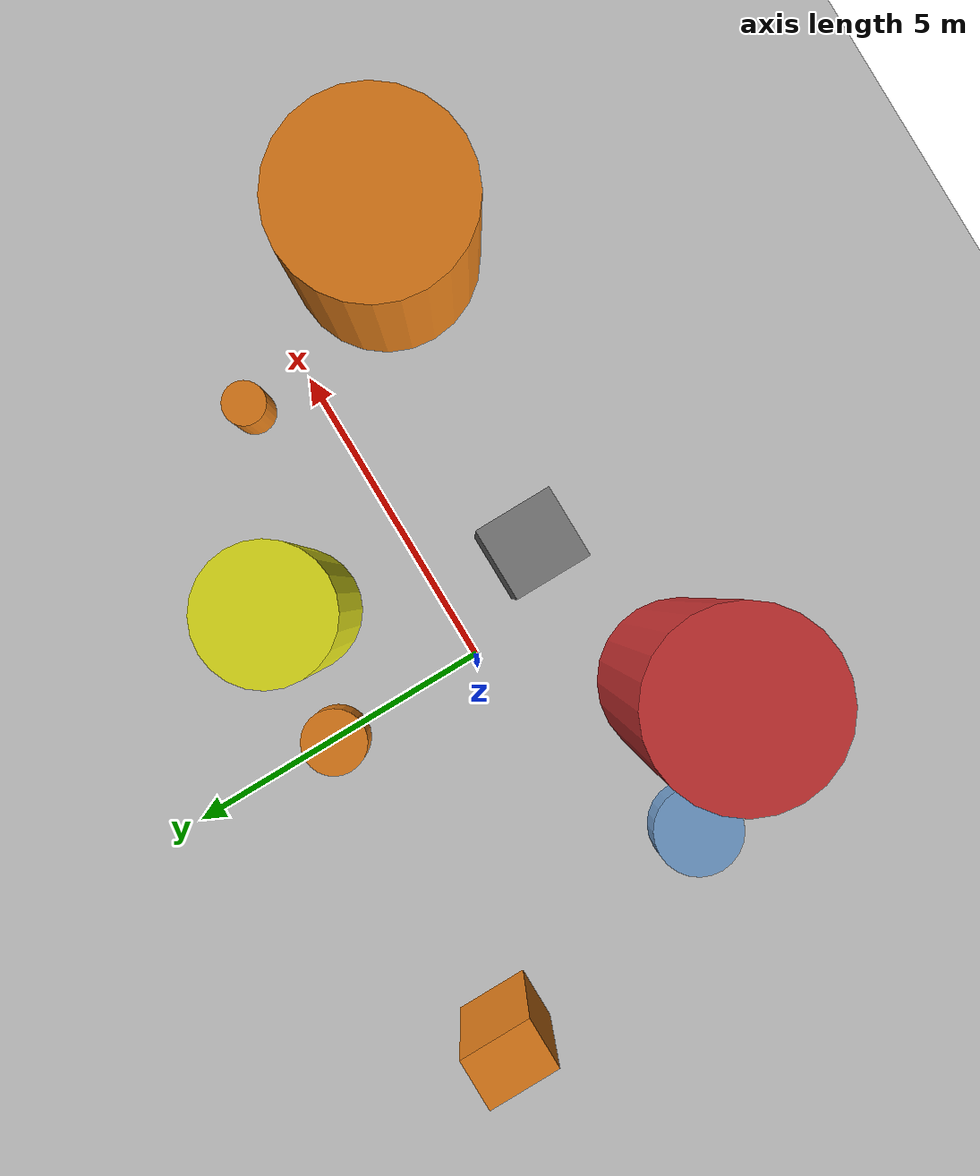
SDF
<?xml version='1.0'?>
<sdf version='1.6'>
  <world name='routeA_rl_v1__support_expansion__rl_train__mixed_3d_low_density_route__000135'>
    <!-- Sun light -->
    <light name='sun' type='directional'>
      <cast_shadows>1</cast_shadows>
      <pose>0 0 10 0 0 0</pose>
      <diffuse>0.8 0.8 0.8 1</diffuse>
      <specular>0.2 0.2 0.2 1</specular>
      <attenuation>
        <range>1000</range>
        <constant>0.9</constant>
        <linear>0.01</linear>
        <quadratic>0.001</quadratic>
      </attenuation>
      <direction>-0.5 0.1 -0.9</direction>
    </light>

    <!-- Ground plane -->
    <model name='ground_plane'>
      <static>1</static>
      <link name='link'>
        <collision name='collision'>
          <geometry>
            <plane>
              <normal>0 0 1</normal>
              <size>100 100</size>
            </plane>
          </geometry>
          <surface>
            <contact>
              <collide_bitmask>65535</collide_bitmask>
              <ode/>
            </contact>
            <friction>
              <ode>
                <mu>100</mu>
                <mu2>50</mu2>
              </ode>
              <torsional><ode/></torsional>
            </friction>
            <bounce/>
          </surface>
          <max_contacts>10</max_contacts>
        </collision>
        <visual name='visual'>
          <cast_shadows>0</cast_shadows>
          <geometry>
            <plane>
              <normal>0 0 1</normal>
              <size>100 100</size>
            </plane>
          </geometry>
          <material>
            <script>
              <uri>file://media/materials/scripts/gazebo.material</uri>
              <n>Gazebo/Grey</n>
            </script>
          </material>
        </visual>
      </link>
    </model>

    <!-- Environment -->
    <magnetic_field>6e-06 2.3e-05 -4.2e-05</magnetic_field>
    <atmosphere type='adiabatic'/>
    <physics name='default_physics' default='0' type='ode'>
      <gravity>0 0 -9.8</gravity>
      <max_step_size>0.004</max_step_size>
      <real_time_factor>1</real_time_factor>
      <real_time_update_rate>250</real_time_update_rate>
    </physics>
    <scene>
      <ambient>0.4 0.4 0.4 1</ambient>
      <background>0.7 0.7 0.7 1</background>
      <shadows>1</shadows>
    </scene>
    <wind/>
    <spherical_coordinates>
      <surface_model>EARTH_WGS84</surface_model>
      <latitude_deg>0</latitude_deg>
      <longitude_deg>0</longitude_deg>
      <elevation>0</elevation>
      <heading_deg>0</heading_deg>
    </spherical_coordinates>

    <!-- ============ OBSTACLES (8) ============ -->
    <model name='low_obs_0'>
      <static>1</static>
      <link name='link'>
        <visual name='visual'>
          <geometry>
            <cylinder>
              <radius>0.6946</radius>
              <length>0.9122</length>
            </cylinder>
          </geometry>
          <material>
            <script>
              <n>Gazebo/Blue</n>
              <uri>file://media/materials/scripts/gazebo.material</uri>
            </script>
            <ambient>0.447 0.624 0.812 1</ambient>
          </material>
        </visual>
        <collision name='collision'>
          <geometry>
            <cylinder>
              <radius>0.6946</radius>
              <length>0.9122</length>
            </cylinder>
          </geometry>
          <max_contacts>10</max_contacts>
          <surface>
            <contact><ode/></contact>
            <bounce/>
            <friction>
              <ode><mu>1</mu><mu2>1</mu2></ode>
              <torsional><ode/></torsional>
            </friction>
          </surface>
        </collision>
      </link>
      <pose>-4.0000 -1.5000 0.4561 0 0 0.0000</pose>
    </model>

    <model name='low_obs_1'>
      <static>1</static>
      <link name='link'>
        <visual name='visual'>
          <geometry>
            <cylinder>
              <radius>0.5102</radius>
              <length>1.0294</length>
            </cylinder>
          </geometry>
          <material>
            <script>
              <n>Gazebo/Orange</n>
              <uri>file://media/materials/scripts/gazebo.material</uri>
            </script>
            <ambient>0.9 0.5 0.1 1</ambient>
          </material>
        </visual>
        <collision name='collision'>
          <geometry>
            <cylinder>
              <radius>0.5102</radius>
              <length>1.0294</length>
            </cylinder>
          </geometry>
          <max_contacts>10</max_contacts>
          <surface>
            <contact><ode/></contact>
            <bounce/>
            <friction>
              <ode><mu>1</mu><mu2>1</mu2></ode>
              <torsional><ode/></torsional>
            </friction>
          </surface>
        </collision>
      </link>
      <pose>0.0000 2.5000 0.5147 0 0 0.0000</pose>
    </model>

    <model name='low_obs_2'>
      <static>1</static>
      <link name='link'>
        <visual name='visual'>
          <geometry>
            <cylinder>
              <radius>0.3404</radius>
              <length>1.3955</length>
            </cylinder>
          </geometry>
          <material>
            <script>
              <n>Gazebo/Orange</n>
              <uri>file://media/materials/scripts/gazebo.material</uri>
            </script>
            <ambient>0.9 0.5 0.1 1</ambient>
          </material>
        </visual>
        <collision name='collision'>
          <geometry>
            <cylinder>
              <radius>0.3404</radius>
              <length>1.3955</length>
            </cylinder>
          </geometry>
          <max_contacts>10</max_contacts>
          <surface>
            <contact><ode/></contact>
            <bounce/>
            <friction>
              <ode><mu>1</mu><mu2>1</mu2></ode>
              <torsional><ode/></torsional>
            </friction>
          </surface>
        </collision>
      </link>
      <pose>5.0000 1.0000 0.6977 0 0 0.0000</pose>
    </model>

    <model name='tall_obs_0'>
      <static>1</static>
      <link name='link'>
        <visual name='visual'>
          <geometry>
            <cylinder>
              <radius>1.2940</radius>
              <length>6.7025</length>
            </cylinder>
          </geometry>
          <material>
            <script>
              <n>Gazebo/Red</n>
              <uri>file://media/materials/scripts/gazebo.material</uri>
            </script>
            <ambient>0.8 0.2 0.2 1</ambient>
          </material>
        </visual>
        <collision name='collision'>
          <geometry>
            <cylinder>
              <radius>1.2940</radius>
              <length>6.7025</length>
            </cylinder>
          </geometry>
          <max_contacts>10</max_contacts>
          <surface>
            <contact><ode/></contact>
            <bounce/>
            <friction>
              <ode><mu>1</mu><mu2>1</mu2></ode>
              <torsional><ode/></torsional>
            </friction>
          </surface>
        </collision>
      </link>
      <pose>-2.0000 -2.5000 3.3512 0 0 0.0000</pose>
    </model>

    <model name='tall_obs_1'>
      <static>1</static>
      <link name='link'>
        <visual name='visual'>
          <geometry>
            <cylinder>
              <radius>0.9777</radius>
              <length>4.8941</length>
            </cylinder>
          </geometry>
          <material>
            <script>
              <n>Gazebo/Yellow</n>
              <uri>file://media/materials/scripts/gazebo.material</uri>
            </script>
            <ambient>0.9 0.9 0.1 1</ambient>
          </material>
        </visual>
        <collision name='collision'>
          <geometry>
            <cylinder>
              <radius>0.9777</radius>
              <length>4.8941</length>
            </cylinder>
          </geometry>
          <max_contacts>10</max_contacts>
          <surface>
            <contact><ode/></contact>
            <bounce/>
            <friction>
              <ode><mu>1</mu><mu2>1</mu2></ode>
              <torsional><ode/></torsional>
            </friction>
          </surface>
        </collision>
      </link>
      <pose>2.0000 2.0000 2.4470 0 0 0.0000</pose>
    </model>

    <model name='tall_obs_2'>
      <static>1</static>
      <link name='link'>
        <visual name='visual'>
          <geometry>
            <cylinder>
              <radius>1.4672</radius>
              <length>4.5191</length>
            </cylinder>
          </geometry>
          <material>
            <script>
              <n>Gazebo/Orange</n>
              <uri>file://media/materials/scripts/gazebo.material</uri>
            </script>
            <ambient>0.9 0.5 0.1 1</ambient>
          </material>
        </visual>
        <collision name='collision'>
          <geometry>
            <cylinder>
              <radius>1.4672</radius>
              <length>4.5191</length>
            </cylinder>
          </geometry>
          <max_contacts>10</max_contacts>
          <surface>
            <contact><ode/></contact>
            <bounce/>
            <friction>
              <ode><mu>1</mu><mu2>1</mu2></ode>
              <torsional><ode/></torsional>
            </friction>
          </surface>
        </collision>
      </link>
      <pose>6.0000 -2.0000 2.2596 0 0 0.0000</pose>
    </model>

    <model name='med_obs_0'>
      <static>1</static>
      <link name='link'>
        <visual name='visual'>
          <geometry>
            <box>
              <size>0.8138 1.1361 3.1039</size>
            </box>
          </geometry>
          <material>
            <script>
              <n>Gazebo/Orange</n>
              <uri>file://media/materials/scripts/gazebo.material</uri>
            </script>
            <ambient>0.9 0.5 0.1 1</ambient>
          </material>
        </visual>
        <collision name='collision'>
          <geometry>
            <box>
              <size>0.8138 1.1361 3.1039</size>
            </box>
          </geometry>
          <max_contacts>10</max_contacts>
          <surface>
            <contact><ode/></contact>
            <bounce/>
            <friction>
              <ode><mu>1</mu><mu2>1</mu2></ode>
              <torsional><ode/></torsional>
            </friction>
          </surface>
        </collision>
      </link>
      <pose>-5.0000 2.5000 1.5519 0 0 0.0000</pose>
    </model>

    <model name='med_obs_1'>
      <static>1</static>
      <link name='link'>
        <visual name='visual'>
          <geometry>
            <box>
              <size>1.1010 1.1745 3.3916</size>
            </box>
          </geometry>
          <material>
            <script>
              <n>Gazebo/Grey</n>
              <uri>file://media/materials/scripts/gazebo.material</uri>
            </script>
            <ambient>0.5 0.5 0.5 1</ambient>
          </material>
        </visual>
        <collision name='collision'>
          <geometry>
            <box>
              <size>1.1010 1.1745 3.3916</size>
            </box>
          </geometry>
          <max_contacts>10</max_contacts>
          <surface>
            <contact><ode/></contact>
            <bounce/>
            <friction>
              <ode><mu>1</mu><mu2>1</mu2></ode>
              <torsional><ode/></torsional>
            </friction>
          </surface>
        </collision>
      </link>
      <pose>1.0000 -1.5000 1.6958 0 0 0.0000</pose>
    </model>

    <!-- GUI camera -->
    <gui fullscreen='0'>
      <camera name='user_camera'>
        <pose>-15 0 18 0 0.85 0.15</pose>
        <view_controller>orbit</view_controller>
        <projection_type>perspective</projection_type>
      </camera>
    </gui>
  </world>
</sdf>
